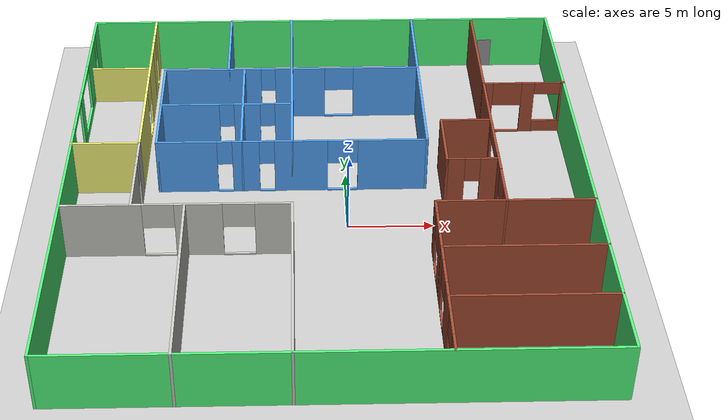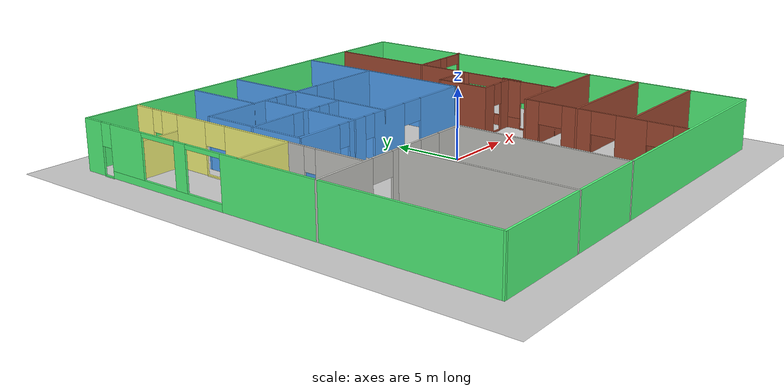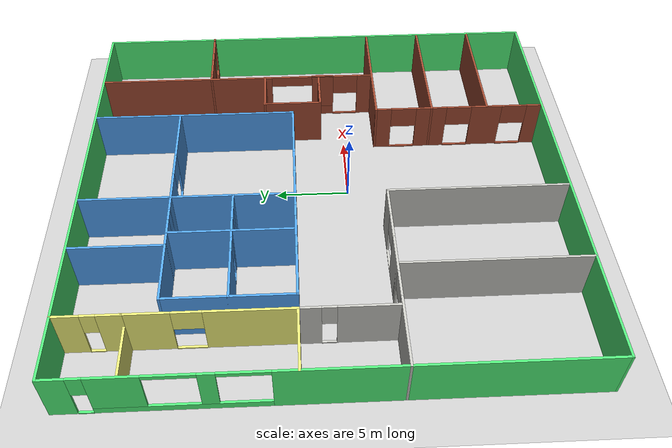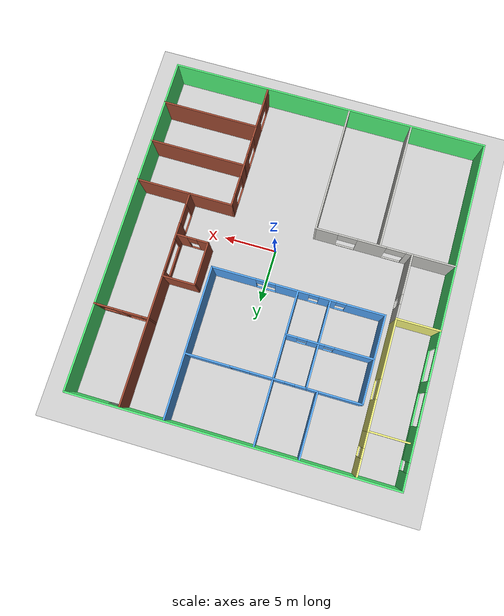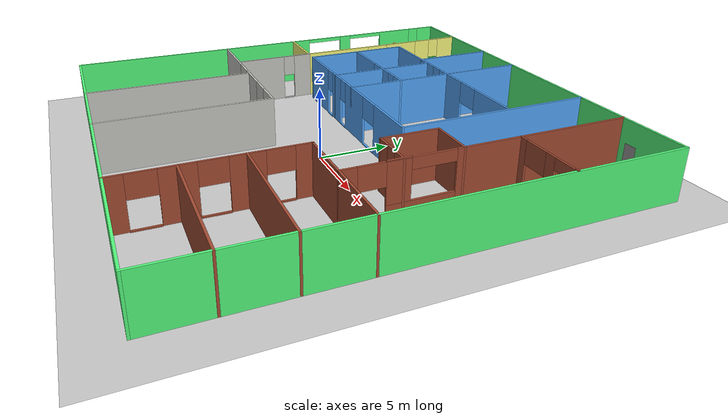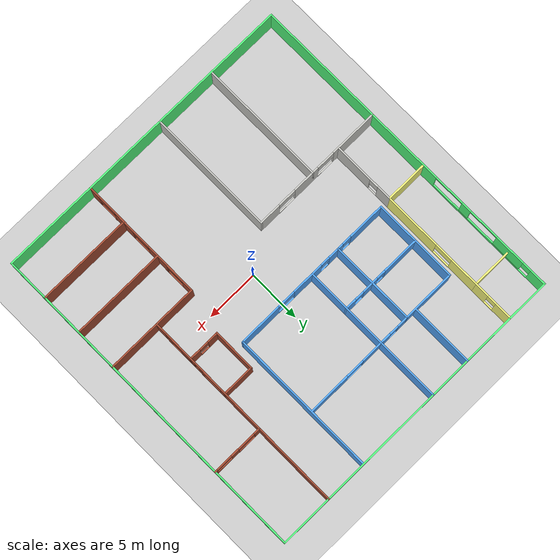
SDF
<sdf version="1.6">
 <world name="default">
  <model name="ground_plane">
   <static>1</static>
   <link name="link">
    <collision name="collision">
     <geometry><plane><normal>0 0 1</normal><size>100 100</size></plane></geometry>
     <surface><friction><ode><mu>100</mu><mu2>50</mu2></ode></friction></surface>
    </collision>
    <visual name="visual">
     <cast_shadows>0</cast_shadows>
     <geometry><plane><normal>0 0 1</normal><size>100 100</size></plane></geometry>
     <material>
      <script><uri>file://media/materials/scripts/gazebo.material</uri><name>Gazebo/Grey</name></script>
     </material>
    </visual>
   </link>
  </model>
  <model name="myfloorplan">
   <pose>-1.20922 1.7115 0 0 -0 0</pose>
   <link name="Door_22">
    <collision name="Door_22_Collision">
     <geometry><box><size>0.9 0.17 2</size></box></geometry>
     <pose>0 0 1 0 -0 0</pose>
    </collision>
    <visual name="Door_22_Visual">
     <pose>0 0 1 0 -0 0</pose>
     <geometry><box><size>0.9 0.17 2</size></box></geometry>
     <material>
      <script><uri>file://media/materials/scripts/gazebo.material</uri><name>Gazebo/Grey</name></script>
     </material>
    </visual>
    <pose>11 16 0 0 -0 0</pose>
   </link>
   <link name="Wall_0">
    <collision name="Wall_0_Collision">
     <geometry><box><size>30.15 0.15 3.6</size></box></geometry>
     <pose>0 0 1.8 0 -0 0</pose>
    </collision>
    <visual name="Wall_0_Visual">
     <pose>0 0 1.8 0 -0 0</pose>
     <geometry><box><size>30.15 0.15 3.6</size></box></geometry>
     <material>
      <script><uri>file://media/materials/scripts/gazebo.material</uri><name>Gazebo/Grey</name></script>
      <ambient>0.333333 1 0.498039 1</ambient>
     </material>
    </visual>
    <pose>0 16 0 0 -0 0</pose>
   </link>
   <link name="Wall_13">
    <collision name="Wall_13_Collision">
     <geometry><box><size>12.15 0.15 3.6</size></box></geometry>
     <pose>0 0 1.8 0 -0 0</pose>
    </collision>
    <visual name="Wall_13_Visual">
     <pose>0 0 1.8 0 -0 0</pose>
     <geometry><box><size>12.15 0.15 3.6</size></box></geometry>
     <material>
      <script><uri>file://media/materials/scripts/gazebo.material</uri><name>Gazebo/CeilingTiled</name></script>
      <ambient>1 1 0.498039 1</ambient>
     </material>
    </visual>
    <pose>-8 -10 0 0 0 -1.5708</pose>
   </link>
   <link name="Wall_15">
    <collision name="Wall_15_Collision">
     <geometry><box><size>12.15 0.15 3.6</size></box></geometry>
     <pose>0 0 1.8 0 -0 0</pose>
    </collision>
    <visual name="Wall_15_Visual">
     <pose>0 0 1.8 0 -0 0</pose>
     <geometry><box><size>12.15 0.15 3.6</size></box></geometry>
     <material>
      <script><uri>file://media/materials/scripts/gazebo.material</uri><name>Gazebo/CeilingTiled</name></script>
      <ambient>1 1 0.498039 1</ambient>
     </material>
    </visual>
    <pose>-2 -10 0 0 0 -1.5708</pose>
   </link>
   <link name="Wall_17">
    <collision name="Wall_17_Collision">
     <geometry><box><size>9.15 0.15 3.6</size></box></geometry>
     <pose>0 0 1.8 0 -0 0</pose>
    </collision>
    <visual name="Wall_17_Visual">
     <pose>0 0 1.8 0 -0 0</pose>
     <geometry><box><size>9.15 0.15 3.6</size></box></geometry>
     <material>
      <script><uri>file://media/materials/scripts/gazebo.material</uri><name>Gazebo/Bricks</name></script>
      <ambient>0.333333 0.666667 1 1</ambient>
     </material>
    </visual>
    <pose>10.5 -4 0 0 -0 0</pose>
   </link>
   <link name="Wall_19">
    <collision name="Wall_19_Collision">
     <geometry><box><size>9.15 0.15 3.6</size></box></geometry>
     <pose>0 0 1.8 0 -0 0</pose>
    </collision>
    <visual name="Wall_19_Visual">
     <pose>0 0 1.8 0 -0 0</pose>
     <geometry><box><size>9.15 0.15 3.6</size></box></geometry>
     <material>
      <script><uri>file://media/materials/scripts/gazebo.material</uri><name>Gazebo/Bricks</name></script>
      <ambient>0.333333 0.666667 1 1</ambient>
     </material>
    </visual>
    <pose>10.5 -8 0 0 -0 0</pose>
   </link>
   <link name="Wall_21">
    <collision name="Wall_21_Collision">
     <geometry><box><size>9.15 0.15 3.6</size></box></geometry>
     <pose>0 0 1.8 0 -0 0</pose>
    </collision>
    <visual name="Wall_21_Visual">
     <pose>0 0 1.8 0 -0 0</pose>
     <geometry><box><size>9.15 0.15 3.6</size></box></geometry>
     <material>
      <script><uri>file://media/materials/scripts/gazebo.material</uri><name>Gazebo/Bricks</name></script>
      <ambient>0.333333 0.666667 1 1</ambient>
     </material>
    </visual>
    <pose>10.5 -12 0 0 -0 0</pose>
   </link>
   <link name="Wall_23">
    <pose>10 6 0 0 0 -1.5708</pose>
    <visual name="Wall_23_Visual_0">
     <pose>-3.7875 0 1.8 0 -0 0</pose>
     <geometry><box><size>12.575 0.15 3.6</size></box></geometry>
     <material>
      <script><uri>file://media/materials/scripts/gazebo.material</uri><name>Gazebo/Bricks</name></script>
      <ambient>0.333333 0.666667 1 1</ambient>
     </material>
    </visual>
    <collision name="Wall_23_Collision_0">
     <geometry><box><size>12.575 0.15 3.6</size></box></geometry>
     <pose>-3.7875 0 1.8 0 -0 0</pose>
    </collision>
    <visual name="Wall_23_Visual_1">
     <pose>9.4875 0 1.8 0 -0 0</pose>
     <geometry><box><size>1.175 0.15 3.6</size></box></geometry>
     <material>
      <script><uri>file://media/materials/scripts/gazebo.material</uri><name>Gazebo/Bricks</name></script>
      <ambient>0.333333 0.666667 1 1</ambient>
     </material>
    </visual>
    <collision name="Wall_23_Collision_1">
     <geometry><box><size>1.175 0.15 3.6</size></box></geometry>
     <pose>9.4875 0 1.8 0 -0 0</pose>
    </collision>
    <visual name="Wall_23_Visual_2">
     <pose>4.8 0 0.4 0 -0 0</pose>
     <geometry><box><size>4.6 0.15 0.8</size></box></geometry>
     <material>
      <script><uri>file://media/materials/scripts/gazebo.material</uri><name>Gazebo/Bricks</name></script>
      <ambient>0.333333 0.666667 1 1</ambient>
     </material>
    </visual>
    <collision name="Wall_23_Collision_2">
     <geometry><box><size>4.6 0.15 0.8</size></box></geometry>
     <pose>4.8 0 0.4 0 -0 0</pose>
    </collision>
    <visual name="Wall_23_Visual_3">
     <pose>8 0 0 0 -0 0</pose>
     <geometry><box><size>1.8 0.15 0.1</size></box></geometry>
     <material>
      <script><uri>file://media/materials/scripts/gazebo.material</uri><name>Gazebo/Bricks</name></script>
      <ambient>0.333333 0.666667 1 1</ambient>
     </material>
    </visual>
    <collision name="Wall_23_Collision_3">
     <geometry><box><size>1.8 0.15 0.1</size></box></geometry>
     <pose>8 0 0 0 -0 0</pose>
    </collision>
    <visual name="Wall_23_Visual_4">
     <pose>6.3 0 2.2 0 -0 0</pose>
     <geometry><box><size>1.6 0.15 2.8</size></box></geometry>
     <material>
      <script><uri>file://media/materials/scripts/gazebo.material</uri><name>Gazebo/Bricks</name></script>
      <ambient>0.333333 0.666667 1 1</ambient>
     </material>
    </visual>
    <collision name="Wall_23_Collision_4">
     <geometry><box><size>1.6 0.15 2.8</size></box></geometry>
     <pose>6.3 0 2.2 0 -0 0</pose>
    </collision>
    <visual name="Wall_23_Visual_5">
     <pose>8 0 2.8 0 -0 0</pose>
     <geometry><box><size>1.8 0.15 1.6</size></box></geometry>
     <material>
      <script><uri>file://media/materials/scripts/gazebo.material</uri><name>Gazebo/Bricks</name></script>
      <ambient>0.333333 0.666667 1 1</ambient>
     </material>
    </visual>
    <collision name="Wall_23_Collision_5">
     <geometry><box><size>1.8 0.15 1.6</size></box></geometry>
     <pose>8 0 2.8 0 -0 0</pose>
    </collision>
    <visual name="Wall_23_Visual_6">
     <pose>4 0 3.2 0 -0 0</pose>
     <geometry><box><size>3 0.15 0.8</size></box></geometry>
     <material>
      <script><uri>file://media/materials/scripts/gazebo.material</uri><name>Gazebo/Bricks</name></script>
      <ambient>0.333333 0.666667 1 1</ambient>
     </material>
    </visual>
    <collision name="Wall_23_Collision_6">
     <geometry><box><size>3 0.15 0.8</size></box></geometry>
     <pose>4 0 3.2 0 -0 0</pose>
    </collision>
    <visual name="Wall_23_Visual_7">
     <pose>6.3 0 3.6 0 -0 0</pose>
     <geometry><box><size>1.6 0.15 0.1</size></box></geometry>
     <material>
      <script><uri>file://media/materials/scripts/gazebo.material</uri><name>Gazebo/Bricks</name></script>
      <ambient>0.333333 0.666667 1 1</ambient>
     </material>
    </visual>
    <collision name="Wall_23_Collision_7">
     <geometry><box><size>1.6 0.15 0.1</size></box></geometry>
     <pose>6.3 0 3.6 0 -0 0</pose>
    </collision>
   </link>
   <link name="Wall_25">
    <collision name="Wall_25_Collision">
     <geometry><box><size>6.15 0.15 3.6</size></box></geometry>
     <pose>0 0 1.8 0 -0 0</pose>
    </collision>
    <visual name="Wall_25_Visual">
     <pose>0 0 1.8 0 -0 0</pose>
     <geometry><box><size>6.15 0.15 3.6</size></box></geometry>
     <material>
      <script><uri>file://media/materials/scripts/gazebo.material</uri><name>Gazebo/Grey</name></script>
      <ambient>0.333333 0.666667 1 1</ambient>
     </material>
    </visual>
    <pose>-6 13 0 0 0 -1.5708</pose>
   </link>
   <link name="Wall_27">
    <collision name="Wall_27_Collision">
     <geometry><box><size>8.15 0.15 3.6</size></box></geometry>
     <pose>0 0 1.8 0 -0 0</pose>
    </collision>
    <visual name="Wall_27_Visual">
     <pose>0 0 1.8 0 -0 0</pose>
     <geometry><box><size>8.15 0.15 3.6</size></box></geometry>
     <material>
      <script><uri>file://media/materials/scripts/gazebo.material</uri><name>Gazebo/Grey</name></script>
      <ambient>0.333333 0.666667 1 1</ambient>
     </material>
    </visual>
    <pose>-10 6 0 0 0 -1.5708</pose>
   </link>
   <link name="Wall_29">
    <collision name="Wall_29_Collision">
     <geometry><box><size>14.15 0.15 3.6</size></box></geometry>
     <pose>0 0 1.8 0 -0 0</pose>
    </collision>
    <visual name="Wall_29_Visual">
     <pose>0 0 1.8 0 -0 0</pose>
     <geometry><box><size>14.15 0.15 3.6</size></box></geometry>
     <material>
      <script><uri>file://media/materials/scripts/gazebo.material</uri><name>Gazebo/Grey</name></script>
      <ambient>0.333333 0.666667 1 1</ambient>
     </material>
    </visual>
    <pose>-2 9 0 0 0 -1.5708</pose>
   </link>
   <link name="Wall_31">
    <collision name="Wall_31_Collision">
     <geometry><box><size>8.15 0.15 3.6</size></box></geometry>
     <pose>0 0 1.8 0 -0 0</pose>
    </collision>
    <visual name="Wall_31_Visual">
     <pose>0 0 1.8 0 -0 0</pose>
     <geometry><box><size>8.15 0.15 3.6</size></box></geometry>
     <material>
      <script><uri>file://media/materials/scripts/gazebo.material</uri><name>Gazebo/Grey</name></script>
      <ambient>0.333333 0.666667 1 1</ambient>
     </material>
    </visual>
    <pose>-5 6 0 0 0 -1.5708</pose>
   </link>
   <link name="Wall_33">
    <collision name="Wall_33_Collision">
     <geometry><box><size>3.15 0.15 3.6</size></box></geometry>
     <pose>0 0 1.8 0 -0 0</pose>
    </collision>
    <visual name="Wall_33_Visual">
     <pose>0 0 1.8 0 -0 0</pose>
     <geometry><box><size>3.15 0.15 3.6</size></box></geometry>
     <material>
      <script><uri>file://media/materials/scripts/gazebo.material</uri><name>Gazebo/Bricks</name></script>
      <ambient>0.333333 0.666667 1 1</ambient>
     </material>
    </visual>
    <pose>8.5 4 0 0 -0 3.14159</pose>
   </link>
   <link name="Wall_34">
    <collision name="Wall_34_Collision">
     <geometry><box><size>4.15 0.15 3.6</size></box></geometry>
     <pose>0 0 1.8 0 -0 0</pose>
    </collision>
    <visual name="Wall_34_Visual">
     <pose>0 0 1.8 0 -0 0</pose>
     <geometry><box><size>4.15 0.15 3.6</size></box></geometry>
     <material>
      <script><uri>file://media/materials/scripts/gazebo.material</uri><name>Gazebo/Bricks</name></script>
      <ambient>0.333333 0.666667 1 1</ambient>
     </material>
    </visual>
    <pose>7 2 0 0 0 -1.5708</pose>
   </link>
   <link name="Wall_36">
    <pose>-11 14 0 0 -0 1.5708</pose>
    <visual name="Wall_36_Visual_0">
     <pose>-1.30968 0 1.8 0 -0 0</pose>
     <geometry><box><size>1.53063 0.15 3.6</size></box></geometry>
     <material>
      <script><uri>file://media/materials/scripts/gazebo.material</uri><name>Gazebo/Grey</name></script>
      <ambient>1 1 0.498039 1</ambient>
     </material>
    </visual>
    <collision name="Wall_36_Collision_0">
     <geometry><box><size>1.53063 0.15 3.6</size></box></geometry>
     <pose>-1.30968 0 1.8 0 -0 0</pose>
    </collision>
    <visual name="Wall_36_Visual_1">
     <pose>1.21531 0 1.8 0 -0 0</pose>
     <geometry><box><size>1.71937 0.15 3.6</size></box></geometry>
     <material>
      <script><uri>file://media/materials/scripts/gazebo.material</uri><name>Gazebo/Grey</name></script>
      <ambient>1 1 0.498039 1</ambient>
     </material>
    </visual>
    <collision name="Wall_36_Collision_1">
     <geometry><box><size>1.71937 0.15 3.6</size></box></geometry>
     <pose>1.21531 0 1.8 0 -0 0</pose>
    </collision>
    <visual name="Wall_36_Visual_2">
     <pose>-0.09437 0 0 0 -0 0</pose>
     <geometry><box><size>0.9 0.15 0.1</size></box></geometry>
     <material>
      <script><uri>file://media/materials/scripts/gazebo.material</uri><name>Gazebo/Grey</name></script>
      <ambient>1 1 0.498039 1</ambient>
     </material>
    </visual>
    <collision name="Wall_36_Collision_2">
     <geometry><box><size>0.9 0.15 0.1</size></box></geometry>
     <pose>-0.09437 0 0 0 -0 0</pose>
    </collision>
    <visual name="Wall_36_Visual_3">
     <pose>-0.09437 0 2.8 0 -0 0</pose>
     <geometry><box><size>0.9 0.15 1.6</size></box></geometry>
     <material>
      <script><uri>file://media/materials/scripts/gazebo.material</uri><name>Gazebo/Grey</name></script>
      <ambient>1 1 0.498039 1</ambient>
     </material>
    </visual>
    <collision name="Wall_36_Collision_3">
     <geometry><box><size>0.9 0.15 1.6</size></box></geometry>
     <pose>-0.09437 0 2.8 0 -0 0</pose>
    </collision>
   </link>
   <link name="Wall_38">
    <pose>-11 7 0 0 0 -1.5708</pose>
    <visual name="Wall_38_Visual_0">
     <pose>-3.66056 0 1.8 0 -0 0</pose>
     <geometry><box><size>2.82888 0.15 3.6</size></box></geometry>
     <material>
      <script><uri>file://media/materials/scripts/gazebo.material</uri><name>Gazebo/Grey</name></script>
      <ambient>1 1 0.498039 1</ambient>
     </material>
    </visual>
    <collision name="Wall_38_Collision_0">
     <geometry><box><size>2.82888 0.15 3.6</size></box></geometry>
     <pose>-3.66056 0 1.8 0 -0 0</pose>
    </collision>
    <visual name="Wall_38_Visual_1">
     <pose>2.31444 0 1.8 0 -0 0</pose>
     <geometry><box><size>5.52112 0.15 3.6</size></box></geometry>
     <material>
      <script><uri>file://media/materials/scripts/gazebo.material</uri><name>Gazebo/Grey</name></script>
      <ambient>1 1 0.498039 1</ambient>
     </material>
    </visual>
    <collision name="Wall_38_Collision_1">
     <geometry><box><size>5.52112 0.15 3.6</size></box></geometry>
     <pose>2.31444 0 1.8 0 -0 0</pose>
    </collision>
    <visual name="Wall_38_Visual_2">
     <pose>-1.34612 0 0 0 -0 0</pose>
     <geometry><box><size>1.8 0.15 0.1</size></box></geometry>
     <material>
      <script><uri>file://media/materials/scripts/gazebo.material</uri><name>Gazebo/Grey</name></script>
      <ambient>1 1 0.498039 1</ambient>
     </material>
    </visual>
    <collision name="Wall_38_Collision_2">
     <geometry><box><size>1.8 0.15 0.1</size></box></geometry>
     <pose>-1.34612 0 0 0 -0 0</pose>
    </collision>
    <visual name="Wall_38_Visual_3">
     <pose>-1.34612 0 2.8 0 -0 0</pose>
     <geometry><box><size>1.8 0.15 1.6</size></box></geometry>
     <material>
      <script><uri>file://media/materials/scripts/gazebo.material</uri><name>Gazebo/Grey</name></script>
      <ambient>1 1 0.498039 1</ambient>
     </material>
    </visual>
    <collision name="Wall_38_Collision_3">
     <geometry><box><size>1.8 0.15 1.6</size></box></geometry>
     <pose>-1.34612 0 2.8 0 -0 0</pose>
    </collision>
   </link>
   <link name="Wall_39">
    <collision name="Wall_39_Collision">
     <geometry><box><size>4.15 0.15 3.6</size></box></geometry>
     <pose>0 0 1.8 0 -0 0</pose>
    </collision>
    <visual name="Wall_39_Visual">
     <pose>0 0 1.8 0 -0 0</pose>
     <geometry><box><size>4.15 0.15 3.6</size></box></geometry>
     <material>
      <script><uri>file://media/materials/scripts/gazebo.material</uri><name>Gazebo/Grey</name></script>
      <ambient>1 1 0.498039 1</ambient>
     </material>
    </visual>
    <pose>-13 2 0 0 -0 3.14159</pose>
   </link>
   <link name="Wall_41">
    <pose>-11 -0.999999 0 0 0 -1.5708</pose>
    <visual name="Wall_41_Visual_0">
     <pose>-2.36537 0 1.8 0 -0 0</pose>
     <geometry><box><size>1.41927 0.15 3.6</size></box></geometry>
     <material>
      <script><uri>file://media/materials/scripts/gazebo.material</uri><name>Gazebo/CeilingTiled</name></script>
      <ambient>1 1 0.498039 1</ambient>
     </material>
    </visual>
    <collision name="Wall_41_Collision_0">
     <geometry><box><size>1.41927 0.15 3.6</size></box></geometry>
     <pose>-2.36537 0 1.8 0 -0 0</pose>
    </collision>
    <visual name="Wall_41_Visual_1">
     <pose>1.15963 0 1.8 0 -0 0</pose>
     <geometry><box><size>3.83073 0.15 3.6</size></box></geometry>
     <material>
      <script><uri>file://media/materials/scripts/gazebo.material</uri><name>Gazebo/CeilingTiled</name></script>
      <ambient>1 1 0.498039 1</ambient>
     </material>
    </visual>
    <collision name="Wall_41_Collision_1">
     <geometry><box><size>3.83073 0.15 3.6</size></box></geometry>
     <pose>1.15963 0 1.8 0 -0 0</pose>
    </collision>
    <visual name="Wall_41_Visual_2">
     <pose>-1.20573 0 0 0 -0 0</pose>
     <geometry><box><size>0.9 0.15 0.1</size></box></geometry>
     <material>
      <script><uri>file://media/materials/scripts/gazebo.material</uri><name>Gazebo/CeilingTiled</name></script>
      <ambient>1 1 0.498039 1</ambient>
     </material>
    </visual>
    <collision name="Wall_41_Collision_2">
     <geometry><box><size>0.9 0.15 0.1</size></box></geometry>
     <pose>-1.20573 0 0 0 -0 0</pose>
    </collision>
    <visual name="Wall_41_Visual_3">
     <pose>-1.20573 0 2.8 0 -0 0</pose>
     <geometry><box><size>0.9 0.15 1.6</size></box></geometry>
     <material>
      <script><uri>file://media/materials/scripts/gazebo.material</uri><name>Gazebo/CeilingTiled</name></script>
      <ambient>1 1 0.498039 1</ambient>
     </material>
    </visual>
    <collision name="Wall_41_Collision_3">
     <geometry><box><size>0.9 0.15 1.6</size></box></geometry>
     <pose>-1.20573 0 2.8 0 -0 0</pose>
    </collision>
   </link>
   <link name="Wall_44">
    <pose>-8.5 -4 0 0 -0 0</pose>
    <visual name="Wall_44_Visual_0">
     <pose>-4.2375 0 1.8 0 -0 0</pose>
     <geometry><box><size>4.675 0.15 3.6</size></box></geometry>
     <material>
      <script><uri>file://media/materials/scripts/gazebo.material</uri><name>Gazebo/CeilingTiled</name></script>
      <ambient>1 1 0.498039 1</ambient>
     </material>
    </visual>
    <collision name="Wall_44_Collision_0">
     <geometry><box><size>4.675 0.15 3.6</size></box></geometry>
     <pose>-4.2375 0 1.8 0 -0 0</pose>
    </collision>
    <visual name="Wall_44_Visual_1">
     <pose>1.25 0 1.8 0 -0 0</pose>
     <geometry><box><size>2.7 0.15 3.6</size></box></geometry>
     <material>
      <script><uri>file://media/materials/scripts/gazebo.material</uri><name>Gazebo/CeilingTiled</name></script>
      <ambient>1 1 0.498039 1</ambient>
     </material>
    </visual>
    <collision name="Wall_44_Collision_1">
     <geometry><box><size>2.7 0.15 3.6</size></box></geometry>
     <pose>1.25 0 1.8 0 -0 0</pose>
    </collision>
    <visual name="Wall_44_Visual_2">
     <pose>5.4875 0 1.8 0 -0 0</pose>
     <geometry><box><size>2.175 0.15 3.6</size></box></geometry>
     <material>
      <script><uri>file://media/materials/scripts/gazebo.material</uri><name>Gazebo/CeilingTiled</name></script>
      <ambient>1 1 0.498039 1</ambient>
     </material>
    </visual>
    <collision name="Wall_44_Collision_2">
     <geometry><box><size>2.175 0.15 3.6</size></box></geometry>
     <pose>5.4875 0 1.8 0 -0 0</pose>
    </collision>
    <visual name="Wall_44_Visual_3">
     <pose>-1 0 0 0 -0 0</pose>
     <geometry><box><size>1.8 0.15 0.1</size></box></geometry>
     <material>
      <script><uri>file://media/materials/scripts/gazebo.material</uri><name>Gazebo/CeilingTiled</name></script>
      <ambient>1 1 0.498039 1</ambient>
     </material>
    </visual>
    <collision name="Wall_44_Collision_3">
     <geometry><box><size>1.8 0.15 0.1</size></box></geometry>
     <pose>-1 0 0 0 -0 0</pose>
    </collision>
    <visual name="Wall_44_Visual_4">
     <pose>3.5 0 0 0 -0 0</pose>
     <geometry><box><size>1.8 0.15 0.1</size></box></geometry>
     <material>
      <script><uri>file://media/materials/scripts/gazebo.material</uri><name>Gazebo/CeilingTiled</name></script>
      <ambient>1 1 0.498039 1</ambient>
     </material>
    </visual>
    <collision name="Wall_44_Collision_4">
     <geometry><box><size>1.8 0.15 0.1</size></box></geometry>
     <pose>3.5 0 0 0 -0 0</pose>
    </collision>
    <visual name="Wall_44_Visual_5">
     <pose>-1 0 2.8 0 -0 0</pose>
     <geometry><box><size>1.8 0.15 1.6</size></box></geometry>
     <material>
      <script><uri>file://media/materials/scripts/gazebo.material</uri><name>Gazebo/CeilingTiled</name></script>
      <ambient>1 1 0.498039 1</ambient>
     </material>
    </visual>
    <collision name="Wall_44_Collision_5">
     <geometry><box><size>1.8 0.15 1.6</size></box></geometry>
     <pose>-1 0 2.8 0 -0 0</pose>
    </collision>
    <visual name="Wall_44_Visual_6">
     <pose>3.5 0 2.8 0 -0 0</pose>
     <geometry><box><size>1.8 0.15 1.6</size></box></geometry>
     <material>
      <script><uri>file://media/materials/scripts/gazebo.material</uri><name>Gazebo/CeilingTiled</name></script>
      <ambient>1 1 0.498039 1</ambient>
     </material>
    </visual>
    <collision name="Wall_44_Collision_6">
     <geometry><box><size>1.8 0.15 1.6</size></box></geometry>
     <pose>3.5 0 2.8 0 -0 0</pose>
    </collision>
   </link>
   <link name="Wall_46">
    <pose>6 -10 0 0 0 -1.5708</pose>
    <visual name="Wall_46_Visual_0">
     <pose>-5.4875 0 1.8 0 -0 0</pose>
     <geometry><box><size>1.175 0.15 3.6</size></box></geometry>
     <material>
      <script><uri>file://media/materials/scripts/gazebo.material</uri><name>Gazebo/Bricks</name></script>
      <ambient>0.333333 0.666667 1 1</ambient>
     </material>
    </visual>
    <collision name="Wall_46_Collision_0">
     <geometry><box><size>1.175 0.15 3.6</size></box></geometry>
     <pose>-5.4875 0 1.8 0 -0 0</pose>
    </collision>
    <visual name="Wall_46_Visual_1">
     <pose>-2 0 1.8 0 -0 0</pose>
     <geometry><box><size>2.2 0.15 3.6</size></box></geometry>
     <material>
      <script><uri>file://media/materials/scripts/gazebo.material</uri><name>Gazebo/Bricks</name></script>
      <ambient>0.333333 0.666667 1 1</ambient>
     </material>
    </visual>
    <collision name="Wall_46_Collision_1">
     <geometry><box><size>2.2 0.15 3.6</size></box></geometry>
     <pose>-2 0 1.8 0 -0 0</pose>
    </collision>
    <visual name="Wall_46_Visual_2">
     <pose>2 0 1.8 0 -0 0</pose>
     <geometry><box><size>2.2 0.15 3.6</size></box></geometry>
     <material>
      <script><uri>file://media/materials/scripts/gazebo.material</uri><name>Gazebo/Bricks</name></script>
      <ambient>0.333333 0.666667 1 1</ambient>
     </material>
    </visual>
    <collision name="Wall_46_Collision_2">
     <geometry><box><size>2.2 0.15 3.6</size></box></geometry>
     <pose>2 0 1.8 0 -0 0</pose>
    </collision>
    <visual name="Wall_46_Visual_3">
     <pose>5.4875 0 1.8 0 -0 0</pose>
     <geometry><box><size>1.175 0.15 3.6</size></box></geometry>
     <material>
      <script><uri>file://media/materials/scripts/gazebo.material</uri><name>Gazebo/Bricks</name></script>
      <ambient>0.333333 0.666667 1 1</ambient>
     </material>
    </visual>
    <collision name="Wall_46_Collision_3">
     <geometry><box><size>1.175 0.15 3.6</size></box></geometry>
     <pose>5.4875 0 1.8 0 -0 0</pose>
    </collision>
    <visual name="Wall_46_Visual_4">
     <pose>-4 0 0 0 -0 0</pose>
     <geometry><box><size>1.8 0.15 0.1</size></box></geometry>
     <material>
      <script><uri>file://media/materials/scripts/gazebo.material</uri><name>Gazebo/Bricks</name></script>
      <ambient>0.333333 0.666667 1 1</ambient>
     </material>
    </visual>
    <collision name="Wall_46_Collision_4">
     <geometry><box><size>1.8 0.15 0.1</size></box></geometry>
     <pose>-4 0 0 0 -0 0</pose>
    </collision>
    <visual name="Wall_46_Visual_5">
     <geometry><box><size>1.8 0.15 0.1</size></box></geometry>
     <material>
      <script><uri>file://media/materials/scripts/gazebo.material</uri><name>Gazebo/Bricks</name></script>
      <ambient>0.333333 0.666667 1 1</ambient>
     </material>
    </visual>
    <collision name="Wall_46_Collision_5"><geometry><box><size>1.8 0.15 0.1</size></box></geometry></collision>
    <visual name="Wall_46_Visual_6">
     <pose>4 0 0 0 -0 0</pose>
     <geometry><box><size>1.8 0.15 0.1</size></box></geometry>
     <material>
      <script><uri>file://media/materials/scripts/gazebo.material</uri><name>Gazebo/Bricks</name></script>
      <ambient>0.333333 0.666667 1 1</ambient>
     </material>
    </visual>
    <collision name="Wall_46_Collision_6">
     <geometry><box><size>1.8 0.15 0.1</size></box></geometry>
     <pose>4 0 0 0 -0 0</pose>
    </collision>
    <visual name="Wall_46_Visual_7">
     <pose>-4 0 2.8 0 -0 0</pose>
     <geometry><box><size>1.8 0.15 1.6</size></box></geometry>
     <material>
      <script><uri>file://media/materials/scripts/gazebo.material</uri><name>Gazebo/Bricks</name></script>
      <ambient>0.333333 0.666667 1 1</ambient>
     </material>
    </visual>
    <collision name="Wall_46_Collision_7">
     <geometry><box><size>1.8 0.15 1.6</size></box></geometry>
     <pose>-4 0 2.8 0 -0 0</pose>
    </collision>
    <visual name="Wall_46_Visual_8">
     <pose>-0 0 2.8 0 -0 0</pose>
     <geometry><box><size>1.8 0.15 1.6</size></box></geometry>
     <material>
      <script><uri>file://media/materials/scripts/gazebo.material</uri><name>Gazebo/Bricks</name></script>
      <ambient>0.333333 0.666667 1 1</ambient>
     </material>
    </visual>
    <collision name="Wall_46_Collision_8">
     <geometry><box><size>1.8 0.15 1.6</size></box></geometry>
     <pose>-0 0 2.8 0 -0 0</pose>
    </collision>
    <visual name="Wall_46_Visual_9">
     <pose>4 0 2.8 0 -0 0</pose>
     <geometry><box><size>1.8 0.15 1.6</size></box></geometry>
     <material>
      <script><uri>file://media/materials/scripts/gazebo.material</uri><name>Gazebo/Bricks</name></script>
      <ambient>0.333333 0.666667 1 1</ambient>
     </material>
    </visual>
    <collision name="Wall_46_Collision_9">
     <geometry><box><size>1.8 0.15 1.6</size></box></geometry>
     <pose>4 0 2.8 0 -0 0</pose>
    </collision>
   </link>
   <link name="Wall_48">
    <pose>12.5 8 0 0 -0 0</pose>
    <visual name="Wall_48_Visual_0">
     <pose>-2.2375 0 1.8 0 -0 0</pose>
     <geometry><box><size>0.675 0.15 3.6</size></box></geometry>
     <material>
      <script><uri>file://media/materials/scripts/gazebo.material</uri><name>Gazebo/Bricks</name></script>
      <ambient>0.333333 0.666667 1 1</ambient>
     </material>
    </visual>
    <collision name="Wall_48_Collision_0">
     <geometry><box><size>0.675 0.15 3.6</size></box></geometry>
     <pose>-2.2375 0 1.8 0 -0 0</pose>
    </collision>
    <visual name="Wall_48_Visual_1">
     <pose>0.3 0 1.8 0 -0 0</pose>
     <geometry><box><size>0.8 0.15 3.6</size></box></geometry>
     <material>
      <script><uri>file://media/materials/scripts/gazebo.material</uri><name>Gazebo/Bricks</name></script>
      <ambient>0.333333 0.666667 1 1</ambient>
     </material>
    </visual>
    <collision name="Wall_48_Collision_1">
     <geometry><box><size>0.8 0.15 3.6</size></box></geometry>
     <pose>0.3 0 1.8 0 -0 0</pose>
    </collision>
    <visual name="Wall_48_Visual_2">
     <pose>-1 0 0 0 -0 0</pose>
     <geometry><box><size>1.8 0.15 0.1</size></box></geometry>
     <material>
      <script><uri>file://media/materials/scripts/gazebo.material</uri><name>Gazebo/Bricks</name></script>
      <ambient>0.333333 0.666667 1 1</ambient>
     </material>
    </visual>
    <collision name="Wall_48_Collision_2">
     <geometry><box><size>1.8 0.15 0.1</size></box></geometry>
     <pose>-1 0 0 0 -0 0</pose>
    </collision>
    <visual name="Wall_48_Visual_3">
     <pose>1.6375 0 0.4 0 -0 0</pose>
     <geometry><box><size>1.875 0.15 0.8</size></box></geometry>
     <material>
      <script><uri>file://media/materials/scripts/gazebo.material</uri><name>Gazebo/Bricks</name></script>
      <ambient>0.333333 0.666667 1 1</ambient>
     </material>
    </visual>
    <collision name="Wall_48_Collision_3">
     <geometry><box><size>1.875 0.15 0.8</size></box></geometry>
     <pose>1.6375 0 0.4 0 -0 0</pose>
    </collision>
    <visual name="Wall_48_Visual_4">
     <pose>2.4375 0 2.2 0 -0 0</pose>
     <geometry><box><size>0.275 0.15 2.8</size></box></geometry>
     <material>
      <script><uri>file://media/materials/scripts/gazebo.material</uri><name>Gazebo/Bricks</name></script>
      <ambient>0.333333 0.666667 1 1</ambient>
     </material>
    </visual>
    <collision name="Wall_48_Collision_4">
     <geometry><box><size>0.275 0.15 2.8</size></box></geometry>
     <pose>2.4375 0 2.2 0 -0 0</pose>
    </collision>
    <visual name="Wall_48_Visual_5">
     <pose>-1 0 2.8 0 -0 0</pose>
     <geometry><box><size>1.8 0.15 1.6</size></box></geometry>
     <material>
      <script><uri>file://media/materials/scripts/gazebo.material</uri><name>Gazebo/Bricks</name></script>
      <ambient>0.333333 0.666667 1 1</ambient>
     </material>
    </visual>
    <collision name="Wall_48_Collision_5">
     <geometry><box><size>1.8 0.15 1.6</size></box></geometry>
     <pose>-1 0 2.8 0 -0 0</pose>
    </collision>
    <visual name="Wall_48_Visual_6">
     <pose>1.5 0 3.2 0 -0 0</pose>
     <geometry><box><size>1.6 0.15 0.8</size></box></geometry>
     <material>
      <script><uri>file://media/materials/scripts/gazebo.material</uri><name>Gazebo/Bricks</name></script>
      <ambient>0.333333 0.666667 1 1</ambient>
     </material>
    </visual>
    <collision name="Wall_48_Collision_6">
     <geometry><box><size>1.6 0.15 0.8</size></box></geometry>
     <pose>1.5 0 3.2 0 -0 0</pose>
    </collision>
    <visual name="Wall_48_Visual_7">
     <pose>2.4375 0 3.6 0 -0 0</pose>
     <geometry><box><size>0.275 0.15 0.1</size></box></geometry>
     <material>
      <script><uri>file://media/materials/scripts/gazebo.material</uri><name>Gazebo/Bricks</name></script>
      <ambient>0.333333 0.666667 1 1</ambient>
     </material>
    </visual>
    <collision name="Wall_48_Collision_7">
     <geometry><box><size>0.275 0.15 0.1</size></box></geometry>
     <pose>2.4375 0 3.6 0 -0 0</pose>
    </collision>
   </link>
   <link name="Wall_5">
    <collision name="Wall_5_Collision">
     <geometry><box><size>32.15 0.15 3.6</size></box></geometry>
     <pose>0 0 1.8 0 -0 0</pose>
    </collision>
    <visual name="Wall_5_Visual">
     <pose>0 0 1.8 0 -0 0</pose>
     <geometry><box><size>32.15 0.15 3.6</size></box></geometry>
     <material>
      <script><uri>file://media/materials/scripts/gazebo.material</uri><name>Gazebo/Grey</name></script>
      <ambient>0.333333 1 0.498039 1</ambient>
     </material>
    </visual>
    <pose>15 1e-06 0 0 0 -1.5708</pose>
   </link>
   <link name="Wall_50">
    <pose>8.5 1e-06 0 0 -0 0</pose>
    <visual name="Wall_50_Visual_0">
     <pose>-1.0125 0 1.8 0 -0 0</pose>
     <geometry><box><size>1.125 0.15 3.6</size></box></geometry>
     <material>
      <script><uri>file://media/materials/scripts/gazebo.material</uri><name>Gazebo/Bricks</name></script>
      <ambient>0.333333 0.666667 1 1</ambient>
     </material>
    </visual>
    <collision name="Wall_50_Collision_0">
     <geometry><box><size>1.125 0.15 3.6</size></box></geometry>
     <pose>-1.0125 0 1.8 0 -0 0</pose>
    </collision>
    <visual name="Wall_50_Visual_1">
     <pose>1.0125 0 1.8 0 -0 0</pose>
     <geometry><box><size>1.125 0.15 3.6</size></box></geometry>
     <material>
      <script><uri>file://media/materials/scripts/gazebo.material</uri><name>Gazebo/Bricks</name></script>
      <ambient>0.333333 0.666667 1 1</ambient>
     </material>
    </visual>
    <collision name="Wall_50_Collision_1">
     <geometry><box><size>1.125 0.15 3.6</size></box></geometry>
     <pose>1.0125 0 1.8 0 -0 0</pose>
    </collision>
    <visual name="Wall_50_Visual_2">
     <geometry><box><size>0.9 0.15 0.1</size></box></geometry>
     <material>
      <script><uri>file://media/materials/scripts/gazebo.material</uri><name>Gazebo/Bricks</name></script>
      <ambient>0.333333 0.666667 1 1</ambient>
     </material>
    </visual>
    <collision name="Wall_50_Collision_2"><geometry><box><size>0.9 0.15 0.1</size></box></geometry></collision>
    <visual name="Wall_50_Visual_3">
     <pose>0 0 2.8 0 -0 0</pose>
     <geometry><box><size>0.9 0.15 1.6</size></box></geometry>
     <material>
      <script><uri>file://media/materials/scripts/gazebo.material</uri><name>Gazebo/Bricks</name></script>
      <ambient>0.333333 0.666667 1 1</ambient>
     </material>
    </visual>
    <collision name="Wall_50_Collision_3">
     <geometry><box><size>0.9 0.15 1.6</size></box></geometry>
     <pose>0 0 2.8 0 -0 0</pose>
    </collision>
   </link>
   <link name="Wall_52">
    <collision name="Wall_52_Collision">
     <geometry><box><size>14.15 0.15 3.6</size></box></geometry>
     <pose>0 0 1.8 0 -0 0</pose>
    </collision>
    <visual name="Wall_52_Visual">
     <pose>0 0 1.8 0 -0 0</pose>
     <geometry><box><size>14.15 0.15 3.6</size></box></geometry>
     <material>
      <script><uri>file://media/materials/scripts/gazebo.material</uri><name>Gazebo/Grey</name></script>
      <ambient>0.333333 0.666667 1 1</ambient>
     </material>
    </visual>
    <pose>6 9 0 0 0 -1.5708</pose>
   </link>
   <link name="Wall_54">
    <pose>-2 2 0 0 -0 0</pose>
    <visual name="Wall_54_Visual_0">
     <pose>-6.2625 0 1.8 0 -0 0</pose>
     <geometry><box><size>3.625 0.15 3.6</size></box></geometry>
     <material>
      <script><uri>file://media/materials/scripts/gazebo.material</uri><name>Gazebo/Grey</name></script>
      <ambient>0.333333 0.666667 1 1</ambient>
     </material>
    </visual>
    <collision name="Wall_54_Collision_0">
     <geometry><box><size>3.625 0.15 3.6</size></box></geometry>
     <pose>-6.2625 0 1.8 0 -0 0</pose>
    </collision>
    <visual name="Wall_54_Visual_1">
     <pose>-2.75 0 1.8 0 -0 0</pose>
     <geometry><box><size>1.6 0.15 3.6</size></box></geometry>
     <material>
      <script><uri>file://media/materials/scripts/gazebo.material</uri><name>Gazebo/Grey</name></script>
      <ambient>0.333333 0.666667 1 1</ambient>
     </material>
    </visual>
    <collision name="Wall_54_Collision_1">
     <geometry><box><size>1.6 0.15 3.6</size></box></geometry>
     <pose>-2.75 0 1.8 0 -0 0</pose>
    </collision>
    <visual name="Wall_54_Visual_2">
     <pose>0.525 0 1.8 0 -0 0</pose>
     <geometry><box><size>3.15 0.15 3.6</size></box></geometry>
     <material>
      <script><uri>file://media/materials/scripts/gazebo.material</uri><name>Gazebo/Grey</name></script>
      <ambient>0.333333 0.666667 1 1</ambient>
     </material>
    </visual>
    <collision name="Wall_54_Collision_2">
     <geometry><box><size>3.15 0.15 3.6</size></box></geometry>
     <pose>0.525 0 1.8 0 -0 0</pose>
    </collision>
    <visual name="Wall_54_Visual_3">
     <pose>5.9875 0 1.8 0 -0 0</pose>
     <geometry><box><size>4.175 0.15 3.6</size></box></geometry>
     <material>
      <script><uri>file://media/materials/scripts/gazebo.material</uri><name>Gazebo/Grey</name></script>
      <ambient>0.333333 0.666667 1 1</ambient>
     </material>
    </visual>
    <collision name="Wall_54_Collision_3">
     <geometry><box><size>4.175 0.15 3.6</size></box></geometry>
     <pose>5.9875 0 1.8 0 -0 0</pose>
    </collision>
    <visual name="Wall_54_Visual_4">
     <pose>-4 0 0 0 -0 0</pose>
     <geometry><box><size>0.9 0.15 0.1</size></box></geometry>
     <material>
      <script><uri>file://media/materials/scripts/gazebo.material</uri><name>Gazebo/Grey</name></script>
      <ambient>0.333333 0.666667 1 1</ambient>
     </material>
    </visual>
    <collision name="Wall_54_Collision_4">
     <geometry><box><size>0.9 0.15 0.1</size></box></geometry>
     <pose>-4 0 0 0 -0 0</pose>
    </collision>
    <visual name="Wall_54_Visual_5">
     <pose>-1.5 0 0 0 -0 0</pose>
     <geometry><box><size>0.9 0.15 0.1</size></box></geometry>
     <material>
      <script><uri>file://media/materials/scripts/gazebo.material</uri><name>Gazebo/Grey</name></script>
      <ambient>0.333333 0.666667 1 1</ambient>
     </material>
    </visual>
    <collision name="Wall_54_Collision_5">
     <geometry><box><size>0.9 0.15 0.1</size></box></geometry>
     <pose>-1.5 0 0 0 -0 0</pose>
    </collision>
    <visual name="Wall_54_Visual_6">
     <pose>3 0 0 0 -0 0</pose>
     <geometry><box><size>1.8 0.15 0.1</size></box></geometry>
     <material>
      <script><uri>file://media/materials/scripts/gazebo.material</uri><name>Gazebo/Grey</name></script>
      <ambient>0.333333 0.666667 1 1</ambient>
     </material>
    </visual>
    <collision name="Wall_54_Collision_6">
     <geometry><box><size>1.8 0.15 0.1</size></box></geometry>
     <pose>3 0 0 0 -0 0</pose>
    </collision>
    <visual name="Wall_54_Visual_7">
     <pose>-4 0 2.8 0 -0 0</pose>
     <geometry><box><size>0.9 0.15 1.6</size></box></geometry>
     <material>
      <script><uri>file://media/materials/scripts/gazebo.material</uri><name>Gazebo/Grey</name></script>
      <ambient>0.333333 0.666667 1 1</ambient>
     </material>
    </visual>
    <collision name="Wall_54_Collision_7">
     <geometry><box><size>0.9 0.15 1.6</size></box></geometry>
     <pose>-4 0 2.8 0 -0 0</pose>
    </collision>
    <visual name="Wall_54_Visual_8">
     <pose>-1.5 0 2.8 0 -0 0</pose>
     <geometry><box><size>0.9 0.15 1.6</size></box></geometry>
     <material>
      <script><uri>file://media/materials/scripts/gazebo.material</uri><name>Gazebo/Grey</name></script>
      <ambient>0.333333 0.666667 1 1</ambient>
     </material>
    </visual>
    <collision name="Wall_54_Collision_8">
     <geometry><box><size>0.9 0.15 1.6</size></box></geometry>
     <pose>-1.5 0 2.8 0 -0 0</pose>
    </collision>
    <visual name="Wall_54_Visual_9">
     <pose>3 0 2.8 0 -0 0</pose>
     <geometry><box><size>1.8 0.15 1.6</size></box></geometry>
     <material>
      <script><uri>file://media/materials/scripts/gazebo.material</uri><name>Gazebo/Grey</name></script>
      <ambient>0.333333 0.666667 1 1</ambient>
     </material>
    </visual>
    <collision name="Wall_54_Collision_9">
     <geometry><box><size>1.8 0.15 1.6</size></box></geometry>
     <pose>3 0 2.8 0 -0 0</pose>
    </collision>
   </link>
   <link name="Wall_56">
    <pose>-2 10 0 0 -0 0</pose>
    <visual name="Wall_56_Visual_0">
     <pose>-5.0125 0 1.8 0 -0 0</pose>
     <geometry><box><size>6.125 0.15 3.6</size></box></geometry>
     <material>
      <script><uri>file://media/materials/scripts/gazebo.material</uri><name>Gazebo/Grey</name></script>
      <ambient>0.333333 0.666667 1 1</ambient>
     </material>
    </visual>
    <collision name="Wall_56_Collision_0">
     <geometry><box><size>6.125 0.15 3.6</size></box></geometry>
     <pose>-5.0125 0 1.8 0 -0 0</pose>
    </collision>
    <visual name="Wall_56_Visual_1">
     <pose>0.525 0 1.8 0 -0 0</pose>
     <geometry><box><size>3.15 0.15 3.6</size></box></geometry>
     <material>
      <script><uri>file://media/materials/scripts/gazebo.material</uri><name>Gazebo/Grey</name></script>
      <ambient>0.333333 0.666667 1 1</ambient>
     </material>
    </visual>
    <collision name="Wall_56_Collision_1">
     <geometry><box><size>3.15 0.15 3.6</size></box></geometry>
     <pose>0.525 0 1.8 0 -0 0</pose>
    </collision>
    <visual name="Wall_56_Visual_2">
     <pose>5.9875 0 1.8 0 -0 0</pose>
     <geometry><box><size>4.175 0.15 3.6</size></box></geometry>
     <material>
      <script><uri>file://media/materials/scripts/gazebo.material</uri><name>Gazebo/Grey</name></script>
      <ambient>0.333333 0.666667 1 1</ambient>
     </material>
    </visual>
    <collision name="Wall_56_Collision_2">
     <geometry><box><size>4.175 0.15 3.6</size></box></geometry>
     <pose>5.9875 0 1.8 0 -0 0</pose>
    </collision>
    <visual name="Wall_56_Visual_3">
     <pose>-1.5 0 0 0 -0 0</pose>
     <geometry><box><size>0.9 0.15 0.1</size></box></geometry>
     <material>
      <script><uri>file://media/materials/scripts/gazebo.material</uri><name>Gazebo/Grey</name></script>
      <ambient>0.333333 0.666667 1 1</ambient>
     </material>
    </visual>
    <collision name="Wall_56_Collision_3">
     <geometry><box><size>0.9 0.15 0.1</size></box></geometry>
     <pose>-1.5 0 0 0 -0 0</pose>
    </collision>
    <visual name="Wall_56_Visual_4">
     <pose>3 0 0 0 -0 0</pose>
     <geometry><box><size>1.8 0.15 0.1</size></box></geometry>
     <material>
      <script><uri>file://media/materials/scripts/gazebo.material</uri><name>Gazebo/Grey</name></script>
      <ambient>0.333333 0.666667 1 1</ambient>
     </material>
    </visual>
    <collision name="Wall_56_Collision_4">
     <geometry><box><size>1.8 0.15 0.1</size></box></geometry>
     <pose>3 0 0 0 -0 0</pose>
    </collision>
    <visual name="Wall_56_Visual_5">
     <pose>-1.5 0 2.8 0 -0 0</pose>
     <geometry><box><size>0.9 0.15 1.6</size></box></geometry>
     <material>
      <script><uri>file://media/materials/scripts/gazebo.material</uri><name>Gazebo/Grey</name></script>
      <ambient>0.333333 0.666667 1 1</ambient>
     </material>
    </visual>
    <collision name="Wall_56_Collision_5">
     <geometry><box><size>0.9 0.15 1.6</size></box></geometry>
     <pose>-1.5 0 2.8 0 -0 0</pose>
    </collision>
    <visual name="Wall_56_Visual_6">
     <pose>3 0 2.8 0 -0 0</pose>
     <geometry><box><size>1.8 0.15 1.6</size></box></geometry>
     <material>
      <script><uri>file://media/materials/scripts/gazebo.material</uri><name>Gazebo/Grey</name></script>
      <ambient>0.333333 0.666667 1 1</ambient>
     </material>
    </visual>
    <collision name="Wall_56_Collision_6">
     <geometry><box><size>1.8 0.15 1.6</size></box></geometry>
     <pose>3 0 2.8 0 -0 0</pose>
    </collision>
   </link>
   <link name="Wall_58">
    <pose>-6 6 0 0 -0 0</pose>
    <visual name="Wall_58_Visual_0">
     <pose>-2.2625 0 1.8 0 -0 0</pose>
     <geometry><box><size>3.625 0.15 3.6</size></box></geometry>
     <material>
      <script><uri>file://media/materials/scripts/gazebo.material</uri><name>Gazebo/Grey</name></script>
      <ambient>0.333333 0.666667 1 1</ambient>
     </material>
    </visual>
    <collision name="Wall_58_Collision_0">
     <geometry><box><size>3.625 0.15 3.6</size></box></geometry>
     <pose>-2.2625 0 1.8 0 -0 0</pose>
    </collision>
    <visual name="Wall_58_Visual_1">
     <pose>1.25 0 1.8 0 -0 0</pose>
     <geometry><box><size>1.6 0.15 3.6</size></box></geometry>
     <material>
      <script><uri>file://media/materials/scripts/gazebo.material</uri><name>Gazebo/Grey</name></script>
      <ambient>0.333333 0.666667 1 1</ambient>
     </material>
    </visual>
    <collision name="Wall_58_Collision_1">
     <geometry><box><size>1.6 0.15 3.6</size></box></geometry>
     <pose>1.25 0 1.8 0 -0 0</pose>
    </collision>
    <visual name="Wall_58_Visual_2">
     <pose>3.5125 0 1.8 0 -0 0</pose>
     <geometry><box><size>1.125 0.15 3.6</size></box></geometry>
     <material>
      <script><uri>file://media/materials/scripts/gazebo.material</uri><name>Gazebo/Grey</name></script>
      <ambient>0.333333 0.666667 1 1</ambient>
     </material>
    </visual>
    <collision name="Wall_58_Collision_2">
     <geometry><box><size>1.125 0.15 3.6</size></box></geometry>
     <pose>3.5125 0 1.8 0 -0 0</pose>
    </collision>
    <visual name="Wall_58_Visual_3">
     <geometry><box><size>0.9 0.15 0.1</size></box></geometry>
     <material>
      <script><uri>file://media/materials/scripts/gazebo.material</uri><name>Gazebo/Grey</name></script>
      <ambient>0.333333 0.666667 1 1</ambient>
     </material>
    </visual>
    <collision name="Wall_58_Collision_3"><geometry><box><size>0.9 0.15 0.1</size></box></geometry></collision>
    <visual name="Wall_58_Visual_4">
     <pose>2.5 0 0 0 -0 0</pose>
     <geometry><box><size>0.9 0.15 0.1</size></box></geometry>
     <material>
      <script><uri>file://media/materials/scripts/gazebo.material</uri><name>Gazebo/Grey</name></script>
      <ambient>0.333333 0.666667 1 1</ambient>
     </material>
    </visual>
    <collision name="Wall_58_Collision_4">
     <geometry><box><size>0.9 0.15 0.1</size></box></geometry>
     <pose>2.5 0 0 0 -0 0</pose>
    </collision>
    <visual name="Wall_58_Visual_5">
     <pose>0 0 2.8 0 -0 0</pose>
     <geometry><box><size>0.9 0.15 1.6</size></box></geometry>
     <material>
      <script><uri>file://media/materials/scripts/gazebo.material</uri><name>Gazebo/Grey</name></script>
      <ambient>0.333333 0.666667 1 1</ambient>
     </material>
    </visual>
    <collision name="Wall_58_Collision_5">
     <geometry><box><size>0.9 0.15 1.6</size></box></geometry>
     <pose>0 0 2.8 0 -0 0</pose>
    </collision>
    <visual name="Wall_58_Visual_6">
     <pose>2.5 0 2.8 0 -0 0</pose>
     <geometry><box><size>0.9 0.15 1.6</size></box></geometry>
     <material>
      <script><uri>file://media/materials/scripts/gazebo.material</uri><name>Gazebo/Grey</name></script>
      <ambient>0.333333 0.666667 1 1</ambient>
     </material>
    </visual>
    <collision name="Wall_58_Collision_6">
     <geometry><box><size>0.9 0.15 1.6</size></box></geometry>
     <pose>2.5 0 2.8 0 -0 0</pose>
    </collision>
   </link>
   <link name="Wall_6">
    <collision name="Wall_6_Collision">
     <geometry><box><size>30.15 0.15 3.6</size></box></geometry>
     <pose>0 0 1.8 0 -0 0</pose>
    </collision>
    <visual name="Wall_6_Visual">
     <pose>0 0 1.8 0 -0 0</pose>
     <geometry><box><size>30.15 0.15 3.6</size></box></geometry>
     <material>
      <script><uri>file://media/materials/scripts/gazebo.material</uri><name>Gazebo/Grey</name></script>
      <ambient>0.333333 1 0.498039 1</ambient>
     </material>
    </visual>
    <pose>0 -16 0 0 -0 3.14159</pose>
   </link>
   <link name="Wall_7">
    <pose>-15 1e-06 0 0 -0 1.5708</pose>
    <visual name="Wall_7_Visual_0">
     <pose>-6.2875 0 1.8 0 -0 0</pose>
     <geometry><box><size>19.575 0.15 3.6</size></box></geometry>
     <material>
      <script><uri>file://media/materials/scripts/gazebo.material</uri><name>Gazebo/Grey</name></script>
      <ambient>0.333333 1 0.498039 1</ambient>
     </material>
    </visual>
    <collision name="Wall_7_Collision_0">
     <geometry><box><size>19.575 0.15 3.6</size></box></geometry>
     <pose>-6.2875 0 1.8 0 -0 0</pose>
    </collision>
    <visual name="Wall_7_Visual_1">
     <pose>15.2625 0 1.8 0 -0 0</pose>
     <geometry><box><size>1.625 0.15 3.6</size></box></geometry>
     <material>
      <script><uri>file://media/materials/scripts/gazebo.material</uri><name>Gazebo/Grey</name></script>
      <ambient>0.333333 1 0.498039 1</ambient>
     </material>
    </visual>
    <collision name="Wall_7_Collision_1">
     <geometry><box><size>1.625 0.15 3.6</size></box></geometry>
     <pose>15.2625 0 1.8 0 -0 0</pose>
    </collision>
    <visual name="Wall_7_Visual_2">
     <pose>8.525 0 0.25 0 -0 0</pose>
     <geometry><box><size>10.05 0.15 0.5</size></box></geometry>
     <material>
      <script><uri>file://media/materials/scripts/gazebo.material</uri><name>Gazebo/Grey</name></script>
      <ambient>0.333333 1 0.498039 1</ambient>
     </material>
    </visual>
    <collision name="Wall_7_Collision_2">
     <geometry><box><size>10.05 0.15 0.5</size></box></geometry>
     <pose>8.525 0 0.25 0 -0 0</pose>
    </collision>
    <visual name="Wall_7_Visual_3">
     <pose>14 0 0 0 -0 0</pose>
     <geometry><box><size>0.9 0.15 0.1</size></box></geometry>
     <material>
      <script><uri>file://media/materials/scripts/gazebo.material</uri><name>Gazebo/Grey</name></script>
      <ambient>0.333333 1 0.498039 1</ambient>
     </material>
    </visual>
    <collision name="Wall_7_Collision_3">
     <geometry><box><size>0.9 0.15 0.1</size></box></geometry>
     <pose>14 0 0 0 -0 0</pose>
    </collision>
    <visual name="Wall_7_Visual_4">
     <pose>7 0 2.05 0 -0 0</pose>
     <geometry><box><size>1 0.15 3.1</size></box></geometry>
     <material>
      <script><uri>file://media/materials/scripts/gazebo.material</uri><name>Gazebo/Grey</name></script>
      <ambient>0.333333 1 0.498039 1</ambient>
     </material>
    </visual>
    <collision name="Wall_7_Collision_4">
     <geometry><box><size>1 0.15 3.1</size></box></geometry>
     <pose>7 0 2.05 0 -0 0</pose>
    </collision>
    <visual name="Wall_7_Visual_5">
     <pose>12.025 0 2.05 0 -0 0</pose>
     <geometry><box><size>3.05 0.15 3.1</size></box></geometry>
     <material>
      <script><uri>file://media/materials/scripts/gazebo.material</uri><name>Gazebo/Grey</name></script>
      <ambient>0.333333 1 0.498039 1</ambient>
     </material>
    </visual>
    <collision name="Wall_7_Collision_5">
     <geometry><box><size>3.05 0.15 3.1</size></box></geometry>
     <pose>12.025 0 2.05 0 -0 0</pose>
    </collision>
    <visual name="Wall_7_Visual_6">
     <pose>14 0 2.8 0 -0 0</pose>
     <geometry><box><size>0.9 0.15 1.6</size></box></geometry>
     <material>
      <script><uri>file://media/materials/scripts/gazebo.material</uri><name>Gazebo/Grey</name></script>
      <ambient>0.333333 1 0.498039 1</ambient>
     </material>
    </visual>
    <collision name="Wall_7_Collision_6">
     <geometry><box><size>0.9 0.15 1.6</size></box></geometry>
     <pose>14 0 2.8 0 -0 0</pose>
    </collision>
    <visual name="Wall_7_Visual_7">
     <pose>5 0 3.45 0 -0 0</pose>
     <geometry><box><size>3 0.15 0.3</size></box></geometry>
     <material>
      <script><uri>file://media/materials/scripts/gazebo.material</uri><name>Gazebo/Grey</name></script>
      <ambient>0.333333 1 0.498039 1</ambient>
     </material>
    </visual>
    <collision name="Wall_7_Collision_7">
     <geometry><box><size>3 0.15 0.3</size></box></geometry>
     <pose>5 0 3.45 0 -0 0</pose>
    </collision>
    <visual name="Wall_7_Visual_8">
     <pose>9 0 3.45 0 -0 0</pose>
     <geometry><box><size>3 0.15 0.3</size></box></geometry>
     <material>
      <script><uri>file://media/materials/scripts/gazebo.material</uri><name>Gazebo/Grey</name></script>
      <ambient>0.333333 1 0.498039 1</ambient>
     </material>
    </visual>
    <collision name="Wall_7_Collision_8">
     <geometry><box><size>3 0.15 0.3</size></box></geometry>
     <pose>9 0 3.45 0 -0 0</pose>
    </collision>
   </link>
   <link name="Wall_9">
    <collision name="Wall_9_Collision">
     <geometry><box><size>4.15 0.15 2.5</size></box></geometry>
     <pose>0 0 1.25 0 -0 0</pose>
    </collision>
    <visual name="Wall_9_Visual">
     <pose>0 0 1.25 0 -0 0</pose>
     <geometry><box><size>4.15 0.15 2.5</size></box></geometry>
     <material>
      <script><uri>file://media/materials/scripts/gazebo.material</uri><name>Gazebo/Grey</name></script>
      <ambient>1 1 0.498039 1</ambient>
     </material>
    </visual>
    <pose>-13 12 0 0 -0 0</pose>
   </link>
   <static>1</static>
  </model>
 </world>
</sdf>
